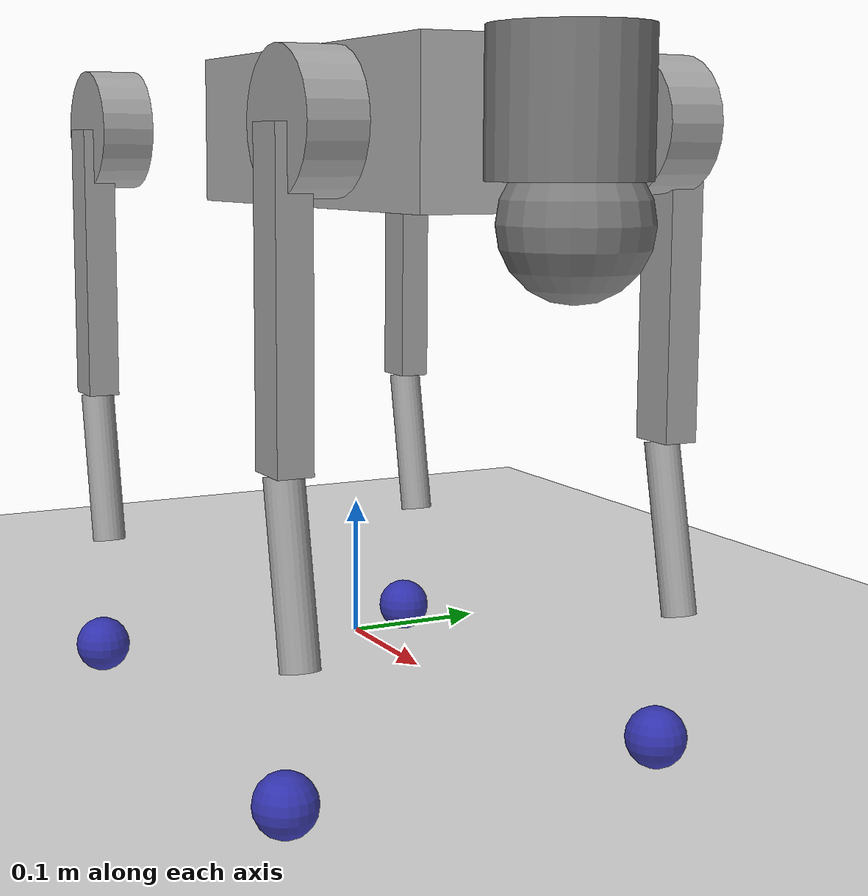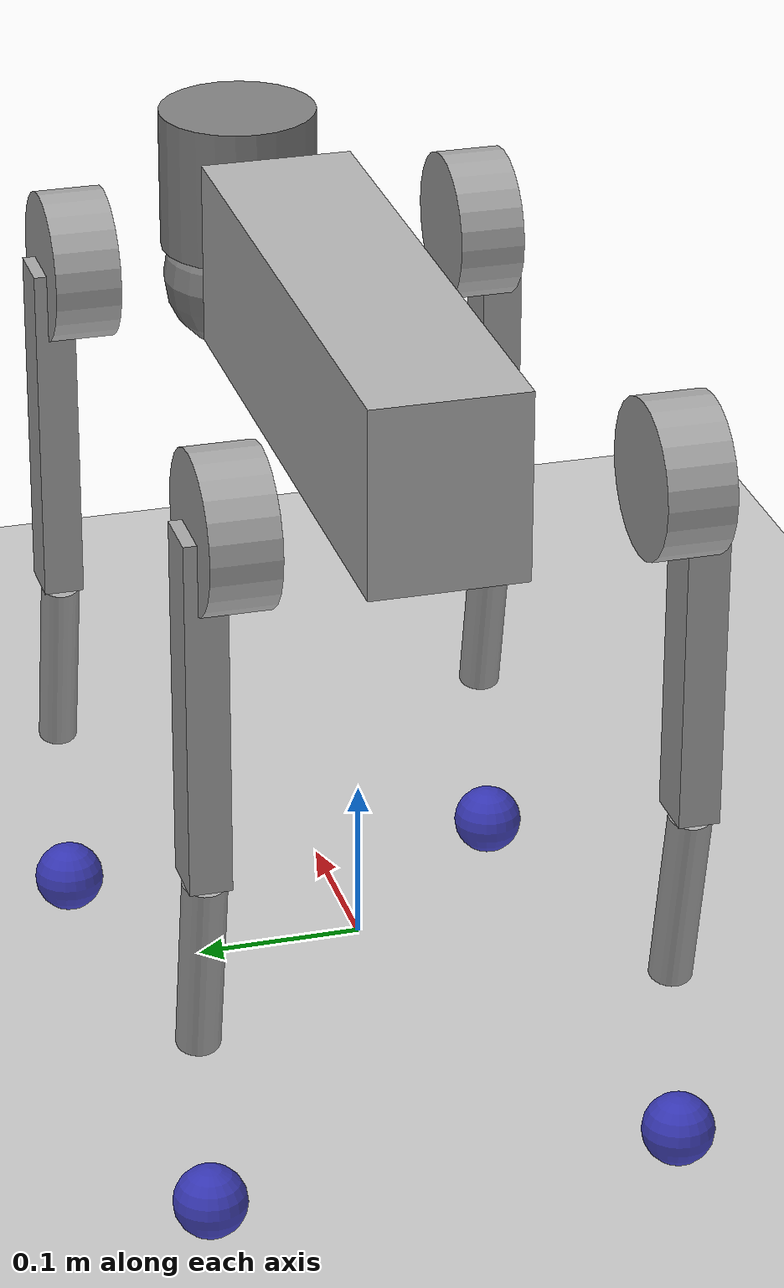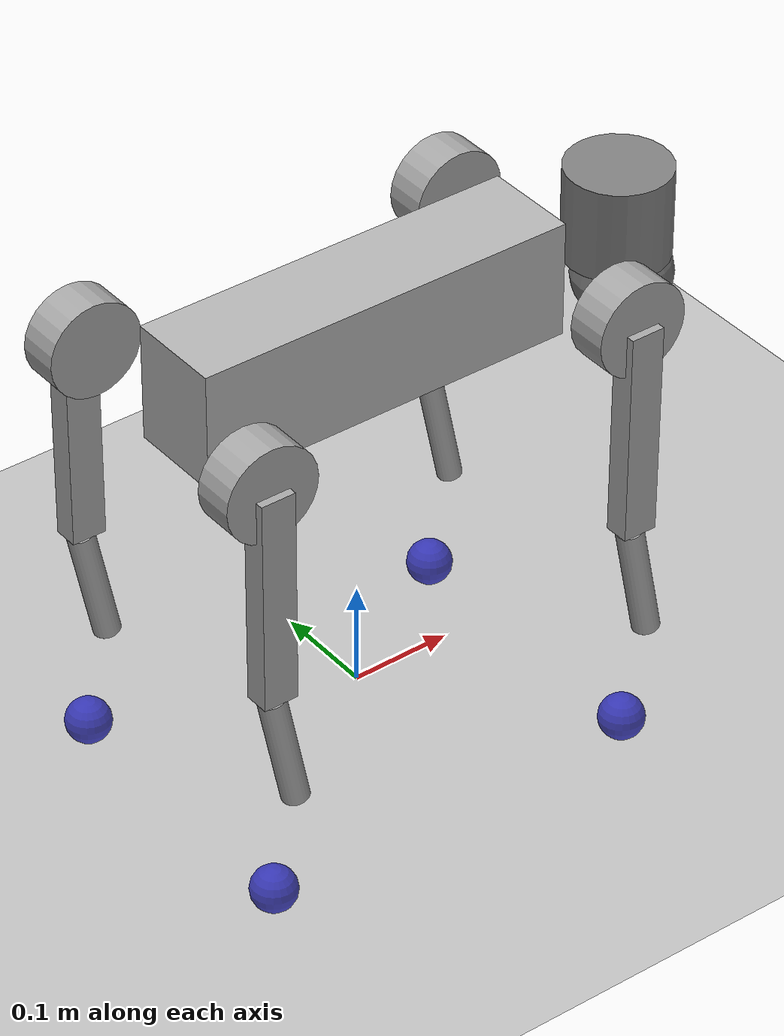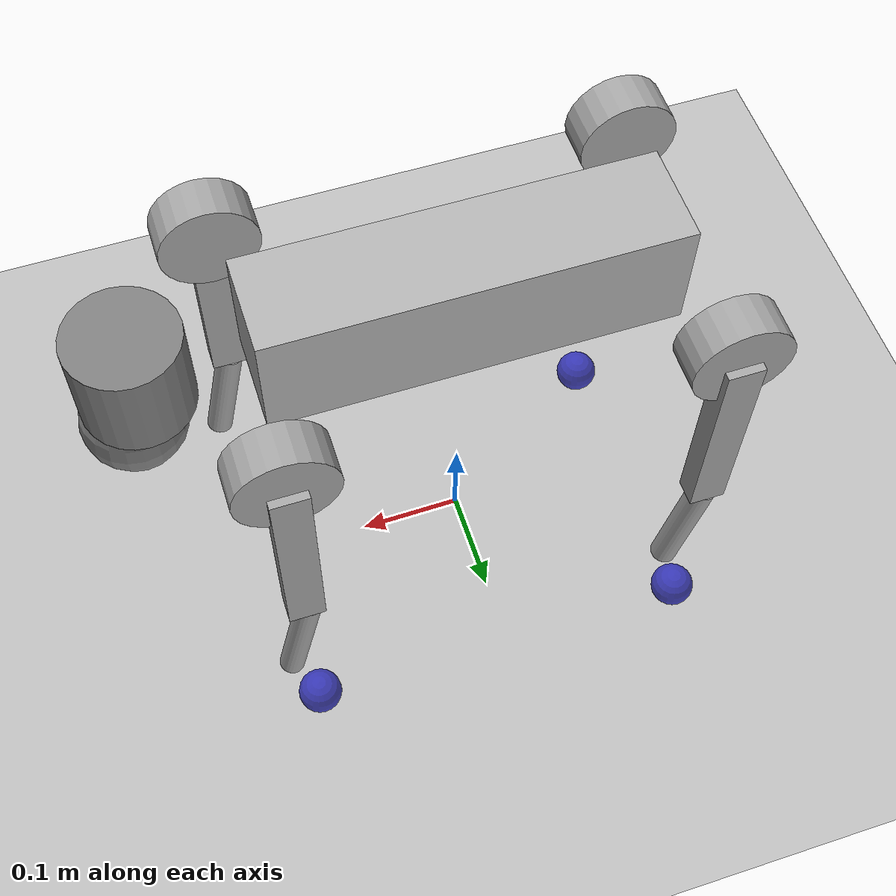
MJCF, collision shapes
<?xml version="1.0" encoding="utf-8"?>
<mujoco model="go2">

  <compiler angle="radian"/>

  <option timestep="0.005" gravity="0 0 -9.81"/>

  <!-- Default properties applied to every joint and geom unless overridden -->
  <default>
    <joint type="hinge" limited="true" damping="0.5" armature="0.0" frictionloss="0.0"/>
    <!-- group=3: collision geoms hidden in viewer by default; group=0 overridden on floor -->
    <geom contype="2" conaffinity="1" friction="0.8 0.005 0.0001" rgba="0.65 0.65 0.65 1" group="3"/>
    <position forcelimited="true" ctrllimited="true"/>
    <!-- Visual-only mesh geoms: no collision, rendered in group 1 -->
    <default class="visual">
      <geom contype="0" conaffinity="0" group="1"/>
    </default>
  </default>

  <!-- ══════════════════════════════════════════════════════════ Assets ══ -->
  <asset>
    <mesh name="trunk"        file="meshes/trunk.dae"/>
    <mesh name="hip"          file="meshes/hip.dae"/>
    <mesh name="thigh"        file="meshes/thigh.dae"/>
    <mesh name="thigh_mirror" file="meshes/thigh_mirror.dae"/>
    <mesh name="calf"         file="meshes/calf.dae"/>
    <mesh name="calf_mirror"  file="meshes/calf_mirror.dae"/>
    <mesh name="foot"         file="meshes/foot.dae"/>
  </asset>

  <!-- ═══════════════════════════════════════════════════════════ World ══ -->
  <worldbody>
    <light name="main_light" directional="true" diffuse="0.8 0.8 0.8" specular="0.1 0.1 0.1"
           pos="0 0 5" dir="0 0.1 -1"/>

    <!-- Flat ground.  contype=1, conaffinity=3  so all robot geoms (contype=2) touch it. -->
    <geom name="floor" type="plane" size="20 20 0.1"
          contype="1" conaffinity="3" friction="1.0 0.005 0.0001"
          rgba="0.3 0.3 0.3 1" group="0"/>

    <!-- ─────────────────────────────────────── Robot trunk ─────────── -->
    <body name="base_link" pos="0 0 0.38">
      <freejoint name="root"/>

      <!--
        Trunk inertia from URDF.
        mass = 6.921 kg, COM at (0.021112, 0, −0.005366)
        fullinertia: ixx iyy izz ixy ixz iyz
      -->
      <inertial pos="0.021112 0 -0.005366" mass="6.921"
                fullinertia="0.02448 0.098077 0.107 0.00012166 0.0014849 -3.12e-05"/>

      <!-- Trunk collision box (half-extents = URDF full / 2) -->
      <geom name="base_collision" type="box" size="0.1881 0.04675 0.057"
            rgba="0.7 0.7 0.7 0.9"/>
      <geom name="trunk_vis" type="mesh" mesh="trunk" class="visual"/>

      <!-- ── Head (fixed, dont_collapse="true" in URDF) ─────────────── -->
      <body name="Head_upper" pos="0.285 0 0.01">
        <inertial pos="0 0 0" mass="0.001" diaginertia="9.6e-06 9.6e-06 9.6e-06"/>
        <!-- Cylinder default axis = Z; URDF orientation rpy="0 0 0" → Z-aligned -->
        <geom name="head_upper_col" type="cylinder" size="0.05 0.045" rgba="0.5 0.5 0.5 1"/>

        <body name="Head_lower" pos="0.008 0 -0.07">
          <inertial pos="0 0 0" mass="0.001" diaginertia="9.6e-06 9.6e-06 9.6e-06"/>
          <geom name="head_lower_col" type="sphere" size="0.047" rgba="0.5 0.5 0.5 1"/>
        </body>
      </body>

      <!-- ══════════════════════════════ Front-Left (FL) leg ══════════ -->
      <body name="FL_hip" pos="0.1934 0.0465 0">
        <!--
          URDF FL_hip_joint: parent=base, child=FL_hip
          axis=x, range=[−1.0472, 1.0472], effort=23.7 N·m
          hip COM: (−0.0054, 0.00194, −0.000105), m=0.678
        -->
        <joint name="FL_hip_joint" axis="1 0 0" range="-1.0472 1.0472"/>
        <inertial pos="-0.0054 0.00194 -0.000105" mass="0.678"
                  fullinertia="0.00048 0.000884 0.000596 -3.01e-06 1.11e-06 -1.42e-06"/>
        <!--
          Cylinder r=0.046, l=0.04  (half-length = 0.02)
          URDF rpy="1.5708 0 0" xyz="0 0.08 0"  → cylinder axis along Y
        -->
        <geom name="FL_hip_col" type="cylinder" size="0.046 0.02"
              pos="0 0.08 0" euler="1.5708 0 0"/>
        <geom name="FL_hip_vis" type="mesh" mesh="hip" class="visual"/>

        <body name="FL_thigh" pos="0 0.0955 0">
          <!--
            URDF FL_thigh_joint: axis=y, range=[−1.5708, 3.4907], effort=23.7 N·m
            thigh COM: (−0.00374, −0.0223, −0.0327), m=1.152
          -->
          <joint name="FL_thigh_joint" axis="0 1 0" range="-1.5708 3.4907"/>
          <inertial pos="-0.00374 -0.0223 -0.0327" mass="1.152"
                    fullinertia="0.00584 0.0058 0.00103 8.72e-05 -0.000289 0.000808"/>
          <!--
            Box full=(0.213, 0.0245, 0.034) → half=(0.1065, 0.01225, 0.017)
            URDF rpy="0 1.5708 0" xyz="0 0 −0.1065"
          -->
          <geom name="FL_thigh_col" type="box" size="0.1065 0.01225 0.017"
                pos="0 0 -0.1065" euler="0 1.5708 0"/>
          <geom name="FL_thigh_vis" type="mesh" mesh="thigh" class="visual"/>

          <body name="FL_calf" pos="0 0 -0.213">
            <!--
              URDF FL_calf_joint: axis=y, range=[−2.7227, −0.83776], effort=45.43 N·m
              calf COM: (0.00548, −0.000975, −0.115), m=0.154
            -->
            <joint name="FL_calf_joint" axis="0 1 0" range="-2.7227 -0.83776"/>
            <inertial pos="0.00548 -0.000975 -0.115" mass="0.154"
                      fullinertia="0.00108 0.0011 3.29e-05 3.4e-07 1.72e-05 8.28e-06"/>
            <!--
              Cylinder r=0.012, l=0.12 (half=0.06)
              URDF rpy="0 −0.21 0" xyz="0.008 0 −0.06"
            -->
            <geom name="FL_calf_col" type="cylinder" size="0.012 0.06"
                  pos="0.008 0 -0.06" euler="0 -0.21 0"/>
            <geom name="FL_calf_vis" type="mesh" mesh="calf" class="visual"/>

            <!-- FL foot (fixed, dont_collapse="true") -->
            <body name="FL_foot" pos="0 0 -0.213">
              <inertial pos="0 0 0" mass="0.04" diaginertia="9.6e-06 9.6e-06 9.6e-06"/>
              <geom name="FL_foot_col" type="sphere" size="0.022" pos="-0.002 0 0"
                    rgba="0.2 0.2 0.9 1"/>
              <geom name="FL_foot_vis" type="mesh" mesh="foot" class="visual"/>
              <site name="FL_foot_site" pos="0 0 0" size="0.01"/>
            </body>
          </body>
        </body>
      </body>

      <!-- ══════════════════════════════ Front-Right (FR) leg ═════════ -->
      <body name="FR_hip" pos="0.1934 -0.0465 0">
        <!--
          FR hip: axis=x, range=[−1.0472, 1.0472]
          COM: (−0.0054, −0.00194, −0.000105), m=0.678
        -->
        <joint name="FR_hip_joint" axis="1 0 0" range="-1.0472 1.0472"/>
        <inertial pos="-0.0054 -0.00194 -0.000105" mass="0.678"
                  fullinertia="0.00048 0.000884 0.000596 3.01e-06 1.11e-06 1.42e-06"/>
        <!-- Cylinder, URDF rpy="1.5708 0 0" xyz="0 −0.08 0" -->
        <geom name="FR_hip_col" type="cylinder" size="0.046 0.02"
              pos="0 -0.08 0" euler="1.5708 0 0"/>
        <!-- URDF visual origin rpy="3.1415 0 0" (180° about X, mirrored hip) -->
        <geom name="FR_hip_vis" type="mesh" mesh="hip" euler="3.1415 0 0" class="visual"/>

        <body name="FR_thigh" pos="0 -0.0955 0">
          <!-- range=[−1.5708, 3.4907] (same as FL), COM mirrored in y -->
          <joint name="FR_thigh_joint" axis="0 1 0" range="-1.5708 3.4907"/>
          <inertial pos="-0.00374 0.0223 -0.0327" mass="1.152"
                    fullinertia="0.00584 0.0058 0.00103 -8.72e-05 -0.000289 -0.000808"/>
          <geom name="FR_thigh_col" type="box" size="0.1065 0.01225 0.017"
                pos="0 0 -0.1065" euler="0 1.5708 0"/>
          <geom name="FR_thigh_vis" type="mesh" mesh="thigh_mirror" class="visual"/>

          <body name="FR_calf" pos="0 0 -0.213">
            <!-- effort=45.43 N·m, COM mirrored in y -->
            <joint name="FR_calf_joint" axis="0 1 0" range="-2.7227 -0.83776"/>
            <inertial pos="0.00548 0.000975 -0.115" mass="0.154"
                      fullinertia="0.00108 0.0011 3.29e-05 -3.4e-07 1.72e-05 -8.28e-06"/>
            <!--
              URDF FR_calf: r=0.013 (differs from FL r=0.012), rpy="0 −0.2 0" xyz="0.01 0 −0.06"
            -->
            <geom name="FR_calf_col" type="cylinder" size="0.013 0.06"
                  pos="0.01 0 -0.06" euler="0 -0.2 0"/>
            <geom name="FR_calf_vis" type="mesh" mesh="calf_mirror" class="visual"/>

            <body name="FR_foot" pos="0 0 -0.213">
              <inertial pos="0 0 0" mass="0.04" diaginertia="9.6e-06 9.6e-06 9.6e-06"/>
              <geom name="FR_foot_col" type="sphere" size="0.022" pos="-0.002 0 0"
                    rgba="0.2 0.2 0.9 1"/>
              <geom name="FR_foot_vis" type="mesh" mesh="foot" class="visual"/>
              <site name="FR_foot_site" pos="0 0 0" size="0.01"/>
            </body>
          </body>
        </body>
      </body>

      <!-- ══════════════════════════════ Rear-Left (RL) leg ═══════════ -->
      <body name="RL_hip" pos="-0.1934 0.0465 0">
        <!--
          RL hip: same roll axis and limits as FL
          COM: (0.0054, 0.00194, −0.000105) [note +x vs FL −x], m=0.678
        -->
        <joint name="RL_hip_joint" axis="1 0 0" range="-1.0472 1.0472"/>
        <inertial pos="0.0054 0.00194 -0.000105" mass="0.678"
                  fullinertia="0.00048 0.000884 0.000596 3.01e-06 -1.11e-06 -1.42e-06"/>
        <geom name="RL_hip_col" type="cylinder" size="0.046 0.02"
              pos="0 0.08 0" euler="1.5708 0 0"/>
        <!-- URDF visual origin rpy="0 3.1415 0" (180° about Y, rear-facing hip) -->
        <geom name="RL_hip_vis" type="mesh" mesh="hip" euler="0 3.1415 0" class="visual"/>

        <body name="RL_thigh" pos="0 0.0955 0">
          <!--
            RL thigh range=[−0.5236, 4.5379]  (WIDER than front: rear legs can extend further)
            COM same as FL thigh
          -->
          <joint name="RL_thigh_joint" axis="0 1 0" range="-0.5236 4.5379"/>
          <inertial pos="-0.00374 -0.0223 -0.0327" mass="1.152"
                    fullinertia="0.00584 0.0058 0.00103 8.72e-05 -0.000289 0.000808"/>
          <geom name="RL_thigh_col" type="box" size="0.1065 0.01225 0.017"
                pos="0 0 -0.1065" euler="0 1.5708 0"/>
          <geom name="RL_thigh_vis" type="mesh" mesh="thigh" class="visual"/>

          <body name="RL_calf" pos="0 0 -0.213">
            <joint name="RL_calf_joint" axis="0 1 0" range="-2.7227 -0.83776"/>
            <inertial pos="0.00548 -0.000975 -0.115" mass="0.154"
                      fullinertia="0.00108 0.0011 3.29e-05 3.4e-07 1.72e-05 8.28e-06"/>
            <!-- r=0.013, rpy="0 −0.2 0" xyz="0.01 0 −0.06" (same as FR) -->
            <geom name="RL_calf_col" type="cylinder" size="0.013 0.06"
                  pos="0.01 0 -0.06" euler="0 -0.2 0"/>
            <geom name="RL_calf_vis" type="mesh" mesh="calf" class="visual"/>

            <body name="RL_foot" pos="0 0 -0.213">
              <inertial pos="0 0 0" mass="0.04" diaginertia="9.6e-06 9.6e-06 9.6e-06"/>
              <geom name="RL_foot_col" type="sphere" size="0.022" pos="-0.002 0 0"
                    rgba="0.2 0.2 0.9 1"/>
              <geom name="RL_foot_vis" type="mesh" mesh="foot" class="visual"/>
              <site name="RL_foot_site" pos="0 0 0" size="0.01"/>
            </body>
          </body>
        </body>
      </body>

      <!-- ══════════════════════════════ Rear-Right (RR) leg ══════════ -->
      <body name="RR_hip" pos="-0.1934 -0.0465 0">
        <!--
          RR hip: COM mirrored in y vs RL
          COM: (0.0054, −0.00194, −0.000105), m=0.678
        -->
        <joint name="RR_hip_joint" axis="1 0 0" range="-1.0472 1.0472"/>
        <inertial pos="0.0054 -0.00194 -0.000105" mass="0.678"
                  fullinertia="0.00048 0.000884 0.000596 -3.01e-06 -1.11e-06 1.42e-06"/>
        <geom name="RR_hip_col" type="cylinder" size="0.046 0.02"
              pos="0 -0.08 0" euler="1.5708 0 0"/>
        <!-- URDF visual origin rpy="3.1415 3.1415 0" (180° about X and Y) -->
        <geom name="RR_hip_vis" type="mesh" mesh="hip" euler="3.1415 3.1415 0" class="visual"/>

        <body name="RR_thigh" pos="0 -0.0955 0">
          <!-- range=[−0.5236, 4.5379], COM mirrored in y vs RL -->
          <joint name="RR_thigh_joint" axis="0 1 0" range="-0.5236 4.5379"/>
          <inertial pos="-0.00374 0.0223 -0.0327" mass="1.152"
                    fullinertia="0.00584 0.0058 0.00103 -8.72e-05 -0.000289 -0.000808"/>
          <geom name="RR_thigh_col" type="box" size="0.1065 0.01225 0.017"
                pos="0 0 -0.1065" euler="0 1.5708 0"/>
          <geom name="RR_thigh_vis" type="mesh" mesh="thigh_mirror" class="visual"/>

          <body name="RR_calf" pos="0 0 -0.213">
            <joint name="RR_calf_joint" axis="0 1 0" range="-2.7227 -0.83776"/>
            <inertial pos="0.00548 0.000975 -0.115" mass="0.154"
                      fullinertia="0.00108 0.0011 3.29e-05 -3.4e-07 1.72e-05 -8.28e-06"/>
            <geom name="RR_calf_col" type="cylinder" size="0.013 0.06"
                  pos="0.01 0 -0.06" euler="0 -0.2 0"/>
            <geom name="RR_calf_vis" type="mesh" mesh="calf_mirror" class="visual"/>

            <body name="RR_foot" pos="0 0 -0.213">
              <inertial pos="0 0 0" mass="0.04" diaginertia="9.6e-06 9.6e-06 9.6e-06"/>
              <geom name="RR_foot_col" type="sphere" size="0.022" pos="-0.002 0 0"
                    rgba="0.2 0.2 0.9 1"/>
              <geom name="RR_foot_vis" type="mesh" mesh="foot" class="visual"/>
              <site name="RR_foot_site" pos="0 0 0" size="0.01"/>
            </body>
          </body>
        </body>
      </body>

    </body>
  </worldbody>

  <actuator>
    <!-- FL -->
    <position name="FL_hip"   joint="FL_hip_joint"   kp="20"
              ctrlrange="-1.0472 1.0472"   forcerange="-23.7 23.7"/>
    <position name="FL_thigh" joint="FL_thigh_joint" kp="20"
              ctrlrange="-1.5708 3.4907"   forcerange="-23.7 23.7"/>
    <position name="FL_calf"  joint="FL_calf_joint"  kp="20"
              ctrlrange="-2.7227 -0.83776" forcerange="-45.43 45.43"/>
    <!-- FR -->
    <position name="FR_hip"   joint="FR_hip_joint"   kp="20"
              ctrlrange="-1.0472 1.0472"   forcerange="-23.7 23.7"/>
    <position name="FR_thigh" joint="FR_thigh_joint" kp="20"
              ctrlrange="-1.5708 3.4907"   forcerange="-23.7 23.7"/>
    <position name="FR_calf"  joint="FR_calf_joint"  kp="20"
              ctrlrange="-2.7227 -0.83776" forcerange="-45.43 45.43"/>
    <!-- RL -->
    <position name="RL_hip"   joint="RL_hip_joint"   kp="20"
              ctrlrange="-1.0472 1.0472"   forcerange="-23.7 23.7"/>
    <position name="RL_thigh" joint="RL_thigh_joint" kp="20"
              ctrlrange="-0.5236 4.5379"   forcerange="-23.7 23.7"/>
    <position name="RL_calf"  joint="RL_calf_joint"  kp="20"
              ctrlrange="-2.7227 -0.83776" forcerange="-45.43 45.43"/>
    <!-- RR -->
    <position name="RR_hip"   joint="RR_hip_joint"   kp="20"
              ctrlrange="-1.0472 1.0472"   forcerange="-23.7 23.7"/>
    <position name="RR_thigh" joint="RR_thigh_joint" kp="20"
              ctrlrange="-0.5236 4.5379"   forcerange="-23.7 23.7"/>
    <position name="RR_calf"  joint="RR_calf_joint"  kp="20"
              ctrlrange="-2.7227 -0.83776" forcerange="-45.43 45.43"/>
  </actuator>

  <sensor>
    <!-- Base state -->
    <framequat      name="base_quat"     objtype="body" objname="base_link"/>
    <framelinvel    name="base_lin_vel"  objtype="body" objname="base_link"/>
    <frameangvel    name="base_ang_vel"  objtype="body" objname="base_link"/>
    <!-- Joint positions (dof_pos) — same order as qpos[7:] -->
    <jointpos name="FL_hip_pos"   joint="FL_hip_joint"/>
    <jointpos name="FL_thigh_pos" joint="FL_thigh_joint"/>
    <jointpos name="FL_calf_pos"  joint="FL_calf_joint"/>
    <jointpos name="FR_hip_pos"   joint="FR_hip_joint"/>
    <jointpos name="FR_thigh_pos" joint="FR_thigh_joint"/>
    <jointpos name="FR_calf_pos"  joint="FR_calf_joint"/>
    <jointpos name="RL_hip_pos"   joint="RL_hip_joint"/>
    <jointpos name="RL_thigh_pos" joint="RL_thigh_joint"/>
    <jointpos name="RL_calf_pos"  joint="RL_calf_joint"/>
    <jointpos name="RR_hip_pos"   joint="RR_hip_joint"/>
    <jointpos name="RR_thigh_pos" joint="RR_thigh_joint"/>
    <jointpos name="RR_calf_pos"  joint="RR_calf_joint"/>
    <!-- Joint velocities (dof_vel) -->
    <jointvel name="FL_hip_vel"   joint="FL_hip_joint"/>
    <jointvel name="FL_thigh_vel" joint="FL_thigh_joint"/>
    <jointvel name="FL_calf_vel"  joint="FL_calf_joint"/>
    <jointvel name="FR_hip_vel"   joint="FR_hip_joint"/>
    <jointvel name="FR_thigh_vel" joint="FR_thigh_joint"/>
    <jointvel name="FR_calf_vel"  joint="FR_calf_joint"/>
    <jointvel name="RL_hip_vel"   joint="RL_hip_joint"/>
    <jointvel name="RL_thigh_vel" joint="RL_thigh_joint"/>
    <jointvel name="RL_calf_vel"  joint="RL_calf_joint"/>
    <jointvel name="RR_hip_vel"   joint="RR_hip_joint"/>
    <jointvel name="RR_thigh_vel" joint="RR_thigh_joint"/>
    <jointvel name="RR_calf_vel"  joint="RR_calf_joint"/>
    <!-- Foot contact forces -->
    <touch name="FL_foot_contact" site="FL_foot_site"/>
    <touch name="FR_foot_contact" site="FR_foot_site"/>
    <touch name="RL_foot_contact" site="RL_foot_site"/>
    <touch name="RR_foot_contact" site="RR_foot_site"/>
  </sensor>

  <keyframe>
    <key name="default"
         qpos=" 0 0 0.38   1 0 0 0
                0.1  0.8  -1.5
               -0.1  0.8  -1.5
                0.1  1.0  -1.5
               -0.1  1.0  -1.5"
         ctrl=" 0.1  0.8  -1.5
               -0.1  0.8  -1.5
                0.1  1.0  -1.5
               -0.1  1.0  -1.5"/>
  </keyframe>

</mujoco>
